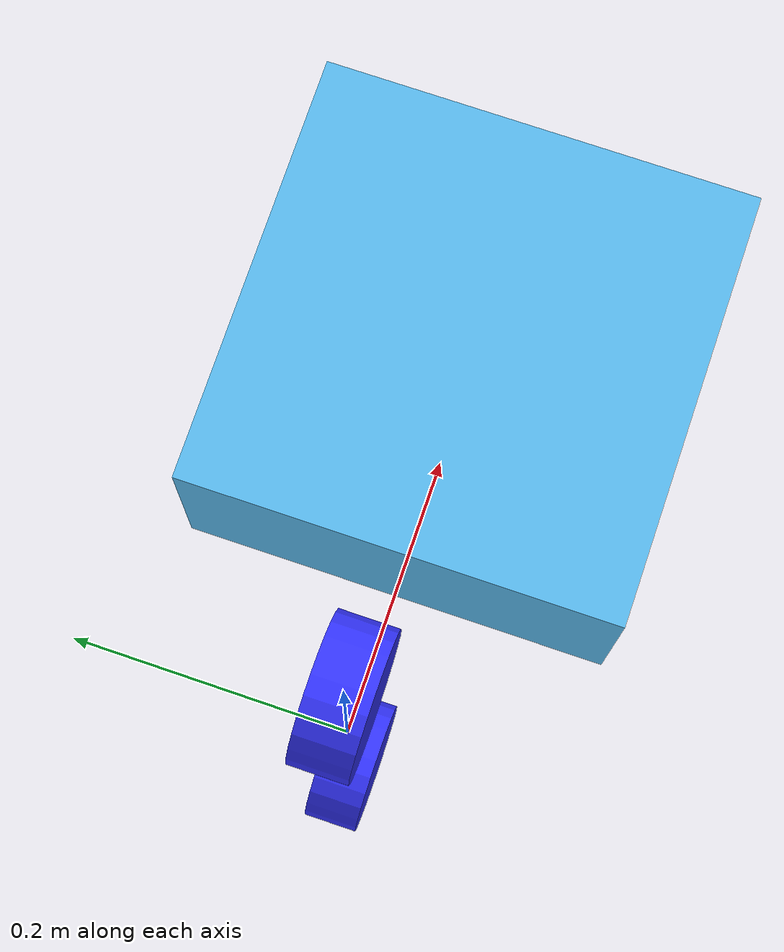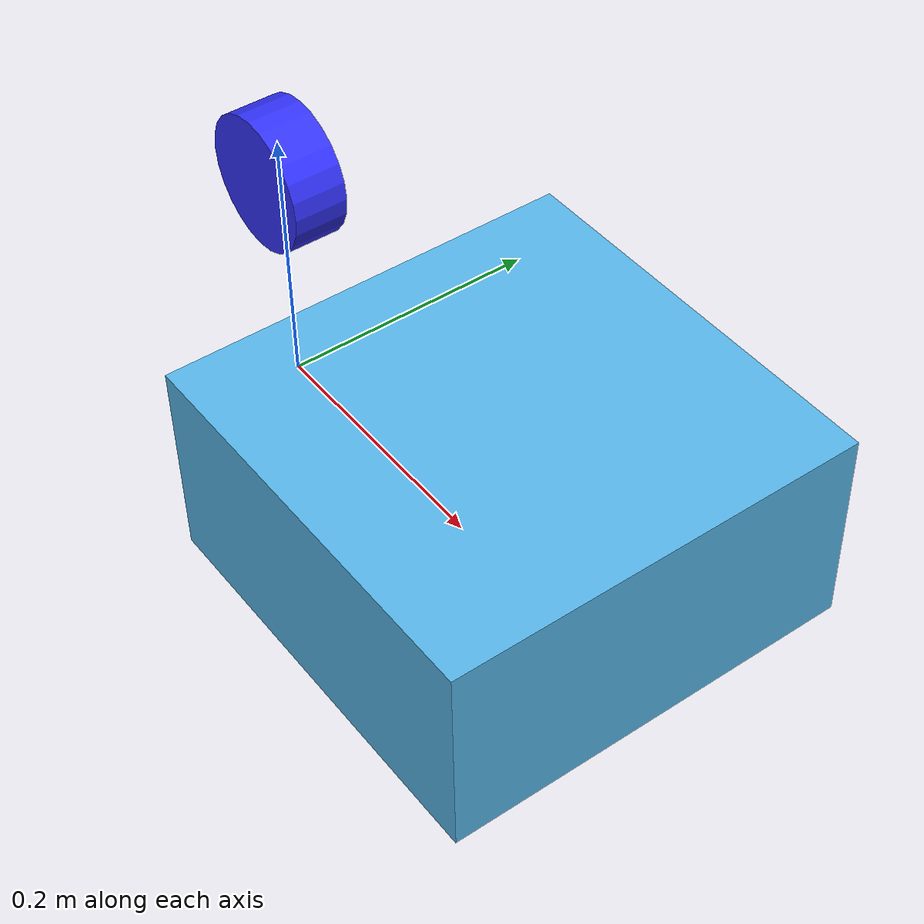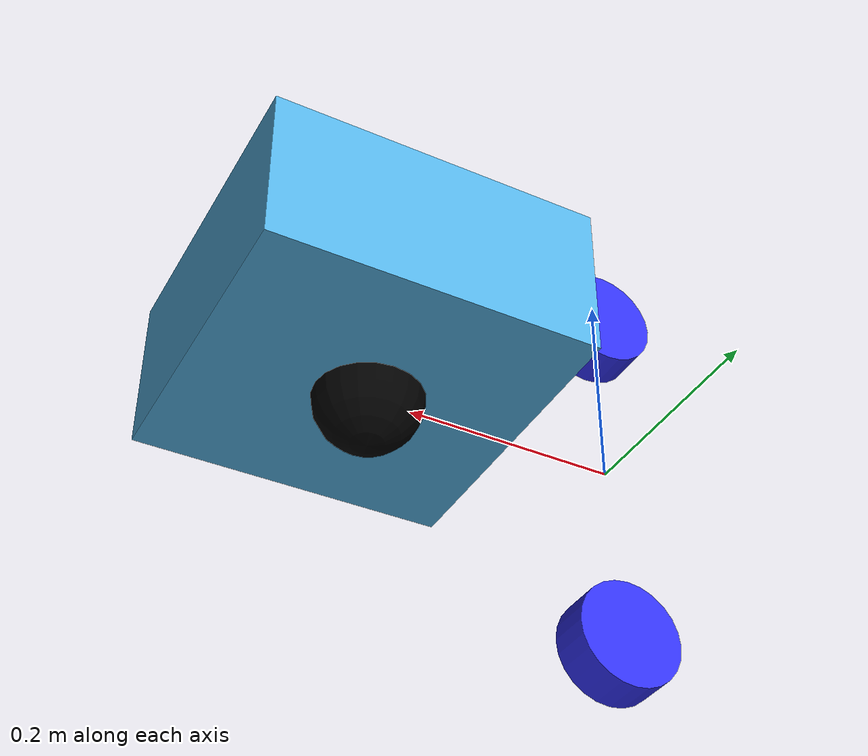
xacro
<?xml version="1.0"?>
<robot xmlns:xacro="https://www.ros.org/wiki/xacro" name="robot">

    <xacro:include filename="inertial_macros.xacro"/>

    <material name="white">
        <color rgba="1 1 1 1"/>
    </material>

    <material name="orange">
        <color rgba="1 0.3 0.1 1"/>
    </material>

    <material name="blue">
        <color rgba="0.2 0.2 1 1"/>
    </material>

    <material name="black">
        <color rgba="0 0 0 1"/>
    </material>

    <!-- BASE LİNK -->

    <link name="base_link">
    </link>

    <!-- CHASSİS LİNK -->

    <joint name="chassis_joint" type="fixed">
        <parent link="base_link"/>
        <child link="chassis"/>
        <origin xyz="0.1 0 0"/>
    </joint>

    <link name="chassis">
        <visual>
            <origin xyz="0.15 0 0.075"/>
            <geometry>
                <box size="0.3 0.3 0.15"/>
            </geometry>

        </visual>

        <collision>
            <origin xyz="0.15 0 0.075"/>
            <geometry>
                <box size="0.3 0.3 0.15"/>
            </geometry>
        </collision>
    </link>

    <!-- LEFT WHEEL LİNK -->

    <joint name="left_wheel_joint" type="continuous">
        <parent link="base_link"/>
        <child link="left_wheel"/>
        <origin xyz="0 0 0.175" rpy="-${pi/2} 0 0"/>
        <axis xyz="0 0 1"/>

    </joint>

    <link name="left_wheel">
        <visual>
            <geometry>
                <cylinder radius="0.05" length="0.04"/>
            </geometry>
            <material name="blue"/>
        </visual>
        <collision>
            <geometry>
                <cylinder radius="0.05" length="0.04"/>
            </geometry>
        </collision>
    </link>

    <!-- RİGHT WHEEL LİNK -->

    <joint name="right_wheel_joint" type="continuous">
        <parent link="base_link"/>
        <child link="right_wheel"/>
        <origin xyz="0 0 -0.175" rpy="${pi/2} 0 0"/>
        <axis xyz="0 0 -1"/>

    </joint>

    <link name="right_wheel">
        <visual>
            <geometry>
                <cylinder radius="0.05" length="0.04"/>
            </geometry>
            <material name="blue"/>
        </visual>
        <collision>
            <geometry>
                <cylinder radius="0.05" length="0.04"/>
            </geometry>
        </collision>
    </link>

    <!-- CASTER WHEEL LİNK -->

    <joint name="caster_wheel_joint" type="fixed">
        <parent link="base_link"/>
        <child link="caster_wheel"/>
        <origin xyz="0.24 0 0"/>
    </joint>

    <link name="caster_wheel">
        <visual>
            <geometry>
                <sphere radius="0.05"/>
            </geometry>
            <material name="black"/>
        </visual>
        <collision>
            <geometry>
                <sphere radius="0.05"/>
            </geometry>
        </collision>
    </link>

</robot>
